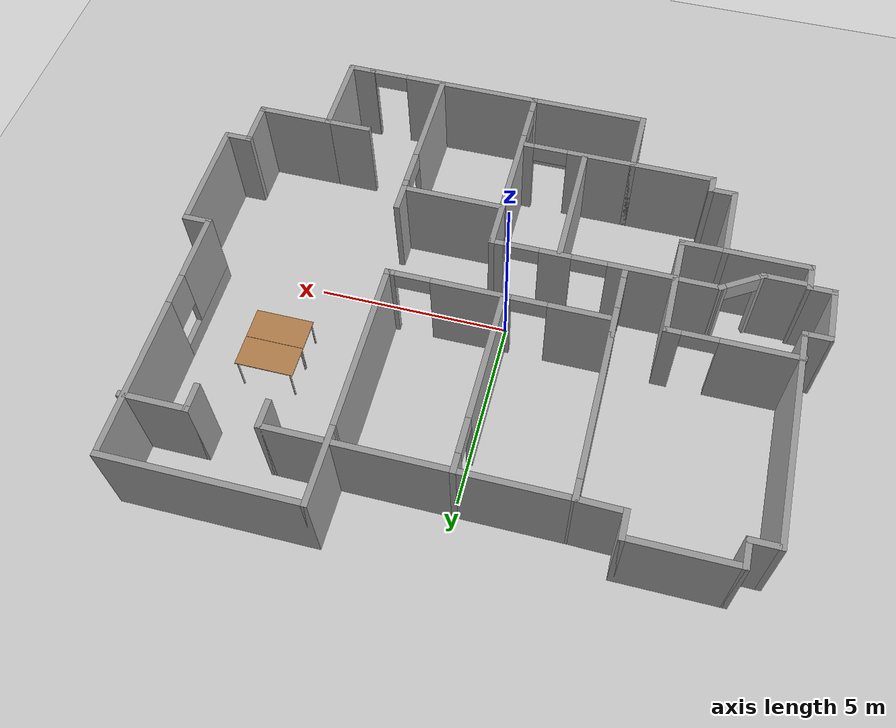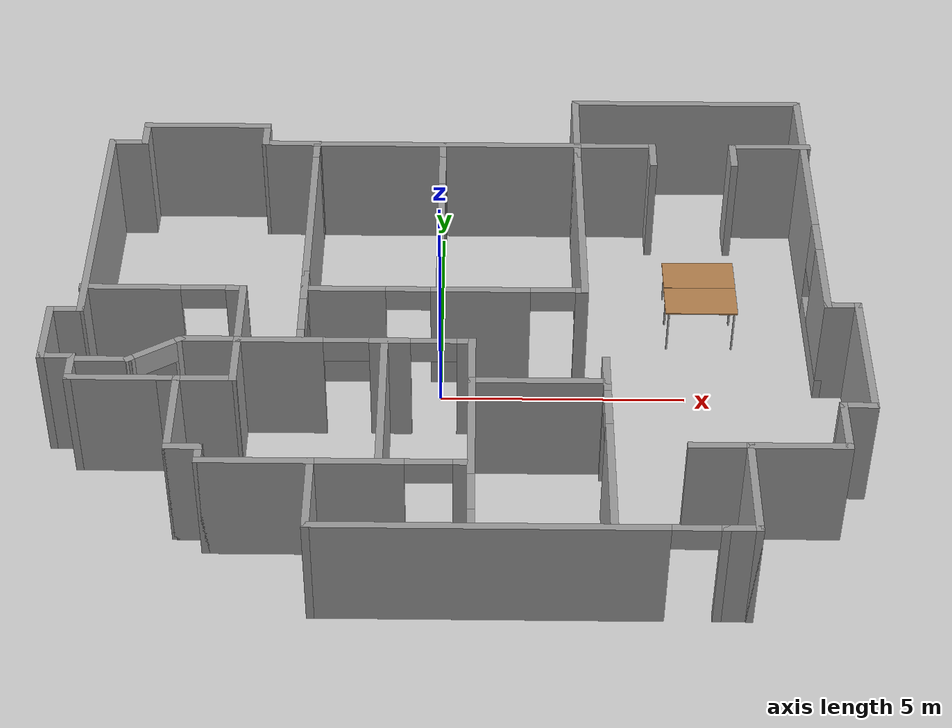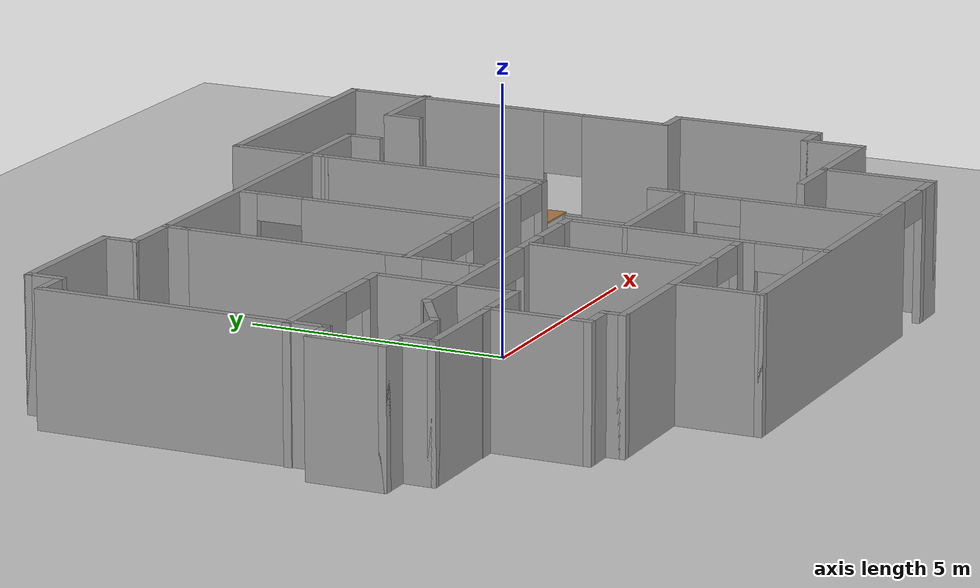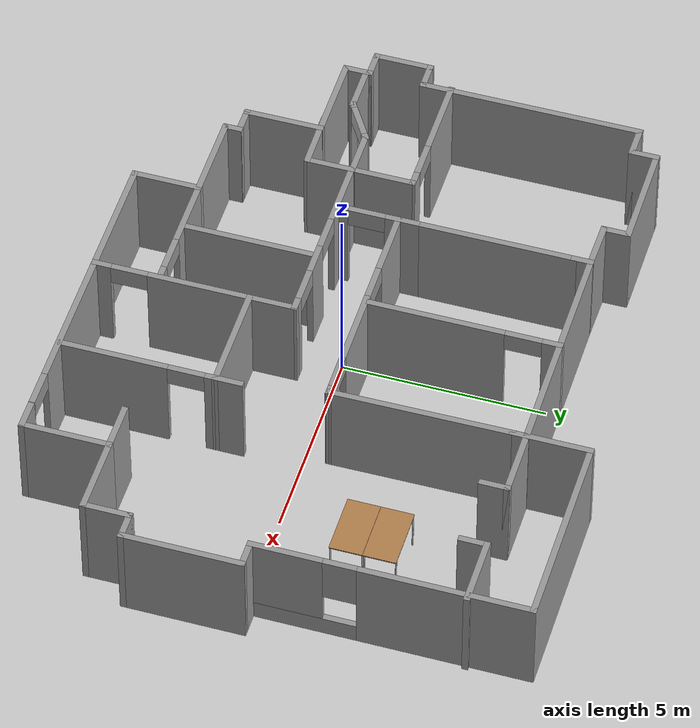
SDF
<sdf version="1.6">
 <world name="default">
  <model name="ground_plane">
   <static>1</static>
   <link name="link">
    <collision name="collision">
     <geometry><plane><normal>0 0 1</normal><size>100 100</size></plane></geometry>
     <surface><friction><ode><mu>100</mu><mu2>50</mu2></ode></friction></surface>
    </collision>
    <visual name="visual">
     <cast_shadows>0</cast_shadows>
     <geometry><plane><normal>0 0 1</normal><size>100 100</size></plane></geometry>
     <material>
      <script><uri>file://media/materials/scripts/gazebo.material</uri><name>Gazebo/Grey</name></script>
     </material>
    </visual>
   </link>
  </model>
  <model name="room01">
   <pose>0.272846 0.453413 0 0 -0 0</pose>
   <link name="Wall_0">
    <collision name="Wall_0_Collision">
     <geometry><box><size>0.75 0.15 2.5</size></box></geometry>
     <pose>0 0 1.25 0 -0 0</pose>
    </collision>
    <visual name="Wall_0_Visual">
     <pose>0 0 1.25 0 -0 0</pose>
     <geometry><box><size>0.75 0.15 2.5</size></box></geometry>
     <material>
      <script><uri>file://media/materials/scripts/gazebo.material</uri><name>Gazebo/Grey</name></script>
      <ambient>1 1 1 1</ambient>
     </material>
     <meta><layer>0</layer></meta>
    </visual>
    <pose>-7.025 4.825 0 0 -0 0</pose>
   </link>
   <link name="Wall_1">
    <collision name="Wall_1_Collision">
     <geometry><box><size>0.75 0.15 2.5</size></box></geometry>
     <pose>0 0 1.25 0 -0 0</pose>
    </collision>
    <visual name="Wall_1_Visual">
     <pose>0 0 1.25 0 -0 0</pose>
     <geometry><box><size>0.75 0.15 2.5</size></box></geometry>
     <material>
      <script><uri>file://media/materials/scripts/gazebo.material</uri><name>Gazebo/Grey</name></script>
      <ambient>1 1 1 1</ambient>
     </material>
     <meta><layer>0</layer></meta>
    </visual>
    <pose>-6.725 5.125 0 0 -0 1.5708</pose>
   </link>
   <link name="Wall_10">
    <collision name="Wall_10_Collision">
     <geometry><box><size>0.75 0.15 2.5</size></box></geometry>
     <pose>0 0 1.25 0 -0 0</pose>
    </collision>
    <visual name="Wall_10_Visual">
     <pose>0 0 1.25 0 -0 0</pose>
     <geometry><box><size>0.75 0.15 2.5</size></box></geometry>
     <material>
      <script><uri>file://media/materials/scripts/gazebo.material</uri><name>Gazebo/Grey</name></script>
      <ambient>1 1 1 1</ambient>
     </material>
     <meta><layer>0</layer></meta>
    </visual>
    <pose>7.725 -0.275 0 0 -0 0</pose>
   </link>
   <link name="Wall_11">
    <collision name="Wall_11_Collision">
     <geometry><box><size>3 0.15 2.5</size></box></geometry>
     <pose>0 0 1.25 0 -0 0</pose>
    </collision>
    <visual name="Wall_11_Visual">
     <pose>0 0 1.25 0 -0 0</pose>
     <geometry><box><size>3 0.15 2.5</size></box></geometry>
     <material>
      <script><uri>file://media/materials/scripts/gazebo.material</uri><name>Gazebo/Grey</name></script>
      <ambient>1 1 1 1</ambient>
     </material>
     <meta><layer>0</layer></meta>
    </visual>
    <pose>8.025 -1.7 0 0 -0 -1.5708</pose>
   </link>
   <link name="Wall_12">
    <collision name="Wall_12_Collision">
     <geometry><box><size>0.75 0.15 2.5</size></box></geometry>
     <pose>0 0 1.25 0 -0 0</pose>
    </collision>
    <visual name="Wall_12_Visual">
     <pose>0 0 1.25 0 -0 0</pose>
     <geometry><box><size>0.75 0.15 2.5</size></box></geometry>
     <material>
      <script><uri>file://media/materials/scripts/gazebo.material</uri><name>Gazebo/Grey</name></script>
      <ambient>1 1 1 1</ambient>
     </material>
     <meta><layer>0</layer></meta>
    </visual>
    <pose>7.725 -3.125 0 0 -0 3.14159</pose>
   </link>
   <link name="Wall_13">
    <collision name="Wall_13_Collision">
     <geometry><box><size>1.25 0.15 2.5</size></box></geometry>
     <pose>0 0 1.25 0 -0 0</pose>
    </collision>
    <visual name="Wall_13_Visual">
     <pose>0 0 1.25 0 -0 0</pose>
     <geometry><box><size>1.25 0.15 2.5</size></box></geometry>
     <material>
      <script><uri>file://media/materials/scripts/gazebo.material</uri><name>Gazebo/Grey</name></script>
      <ambient>1 1 1 1</ambient>
     </material>
     <meta><layer>0</layer></meta>
    </visual>
    <pose>7.425 -3.675 0 0 -0 -1.5708</pose>
   </link>
   <link name="Wall_14">
    <collision name="Wall_14_Collision">
     <geometry><box><size>2 0.15 2.5</size></box></geometry>
     <pose>0 0 1.25 0 -0 0</pose>
    </collision>
    <visual name="Wall_14_Visual">
     <pose>0 0 1.25 0 -0 0</pose>
     <geometry><box><size>2 0.15 2.5</size></box></geometry>
     <material>
      <script><uri>file://media/materials/scripts/gazebo.material</uri><name>Gazebo/Grey</name></script>
      <ambient>1 1 1 1</ambient>
     </material>
     <meta><layer>0</layer></meta>
    </visual>
    <pose>6.5 -4.225 0 0 -0 3.14159</pose>
   </link>
   <link name="Wall_15">
    <collision name="Wall_15_Collision">
     <geometry><box><size>2.25 0.15 2.5</size></box></geometry>
     <pose>0 0 1.25 0 -0 0</pose>
    </collision>
    <visual name="Wall_15_Visual">
     <pose>0 0 1.25 0 -0 0</pose>
     <geometry><box><size>2.25 0.15 2.5</size></box></geometry>
     <material>
      <script><uri>file://media/materials/scripts/gazebo.material</uri><name>Gazebo/Grey</name></script>
      <ambient>1 1 1 1</ambient>
     </material>
     <meta><layer>0</layer></meta>
    </visual>
    <pose>5.575 -5.275 0 0 -0 -1.5708</pose>
   </link>
   <link name="Wall_16">
    <collision name="Wall_16_Collision">
     <geometry><box><size>0.75 0.15 2.5</size></box></geometry>
     <pose>0 0 1.25 0 -0 0</pose>
    </collision>
    <visual name="Wall_16_Visual">
     <pose>0 0 1.25 0 -0 0</pose>
     <geometry><box><size>0.75 0.15 2.5</size></box></geometry>
     <material>
      <script><uri>file://media/materials/scripts/gazebo.material</uri><name>Gazebo/Grey</name></script>
      <ambient>1 1 1 1</ambient>
     </material>
     <meta><layer>0</layer></meta>
    </visual>
    <pose>5.275 -6.325 0 0 -0 3.14159</pose>
   </link>
   <link name="Wall_17">
    <pose>1.175 -6.325 0 0 -0 3.14159</pose>
    <visual name="Wall_17_Visual_0">
     <pose>-3.79148 0 1.25 0 -0 0</pose>
     <geometry><box><size>0.167045 0.15 2.5</size></box></geometry>
     <material>
      <script><uri>file://media/materials/scripts/gazebo.material</uri><name>Gazebo/Grey</name></script>
      <ambient>1 1 1 1</ambient>
     </material>
     <meta><layer>0</layer></meta>
    </visual>
    <collision name="Wall_17_Collision_0">
     <geometry><box><size>0.167045 0.15 2.5</size></box></geometry>
     <pose>-3.79148 0 1.25 0 -0 0</pose>
    </collision>
    <visual name="Wall_17_Visual_1">
     <pose>0.533523 0 1.25 0 -0 0</pose>
     <geometry><box><size>6.68295 0.15 2.5</size></box></geometry>
     <material>
      <script><uri>file://media/materials/scripts/gazebo.material</uri><name>Gazebo/Grey</name></script>
      <ambient>1 1 1 1</ambient>
     </material>
     <meta><layer>0</layer></meta>
    </visual>
    <collision name="Wall_17_Collision_1">
     <geometry><box><size>6.68295 0.15 2.5</size></box></geometry>
     <pose>0.533523 0 1.25 0 -0 0</pose>
    </collision>
    <visual name="Wall_17_Visual_2">
     <pose>-3.25795 0 2.25 0 -0 0</pose>
     <geometry><box><size>0.9 0.15 0.5</size></box></geometry>
     <material>
      <script><uri>file://media/materials/scripts/gazebo.material</uri><name>Gazebo/Grey</name></script>
      <ambient>1 1 1 1</ambient>
     </material>
     <meta><layer>0</layer></meta>
    </visual>
    <collision name="Wall_17_Collision_2">
     <geometry><box><size>0.9 0.15 0.5</size></box></geometry>
     <pose>-3.25795 0 2.25 0 -0 0</pose>
    </collision>
   </link>
   <link name="Wall_18">
    <collision name="Wall_18_Collision">
     <geometry><box><size>1.75 0.15 2.5</size></box></geometry>
     <pose>0 0 1.25 0 -0 0</pose>
    </collision>
    <visual name="Wall_18_Visual">
     <pose>0 0 1.25 0 -0 0</pose>
     <geometry><box><size>1.75 0.15 2.5</size></box></geometry>
     <material>
      <script><uri>file://media/materials/scripts/gazebo.material</uri><name>Gazebo/Grey</name></script>
      <ambient>1 1 1 1</ambient>
     </material>
     <meta><layer>0</layer></meta>
    </visual>
    <pose>-2.625 -5.525 0 0 -0 1.5708</pose>
   </link>
   <link name="Wall_19">
    <collision name="Wall_19_Collision">
     <geometry><box><size>2.25 0.15 2.5</size></box></geometry>
     <pose>0 0 1.25 0 -0 0</pose>
    </collision>
    <visual name="Wall_19_Visual">
     <pose>0 0 1.25 0 -0 0</pose>
     <geometry><box><size>2.25 0.15 2.5</size></box></geometry>
     <material>
      <script><uri>file://media/materials/scripts/gazebo.material</uri><name>Gazebo/Grey</name></script>
      <ambient>1 1 1 1</ambient>
     </material>
     <meta><layer>0</layer></meta>
    </visual>
    <pose>-3.675 -4.725 0 0 -0 3.14159</pose>
   </link>
   <link name="Wall_2">
    <collision name="Wall_2_Collision">
     <geometry><box><size>2.75 0.15 2.5</size></box></geometry>
     <pose>0 0 1.25 0 -0 0</pose>
    </collision>
    <visual name="Wall_2_Visual">
     <pose>0 0 1.25 0 -0 0</pose>
     <geometry><box><size>2.75 0.15 2.5</size></box></geometry>
     <material>
      <script><uri>file://media/materials/scripts/gazebo.material</uri><name>Gazebo/Grey</name></script>
      <ambient>1 1 1 1</ambient>
     </material>
     <meta><layer>0</layer></meta>
    </visual>
    <pose>-5.425 5.425 0 0 -0 0</pose>
   </link>
   <link name="Wall_20">
    <collision name="Wall_20_Collision">
     <geometry><box><size>0.5 0.15 2.5</size></box></geometry>
     <pose>0 0 1.25 0 -0 0</pose>
    </collision>
    <visual name="Wall_20_Visual">
     <pose>0 0 1.25 0 -0 0</pose>
     <geometry><box><size>0.5 0.15 2.5</size></box></geometry>
     <material>
      <script><uri>file://media/materials/scripts/gazebo.material</uri><name>Gazebo/Grey</name></script>
      <ambient>1 1 1 1</ambient>
     </material>
     <meta><layer>0</layer></meta>
    </visual>
    <pose>-4.725 -4.55 0 0 -0 1.5708</pose>
   </link>
   <link name="Wall_21">
    <collision name="Wall_21_Collision">
     <geometry><box><size>0.75 0.15 2.5</size></box></geometry>
     <pose>0 0 1.25 0 -0 0</pose>
    </collision>
    <visual name="Wall_21_Visual">
     <pose>0 0 1.25 0 -0 0</pose>
     <geometry><box><size>0.75 0.15 2.5</size></box></geometry>
     <material>
      <script><uri>file://media/materials/scripts/gazebo.material</uri><name>Gazebo/Grey</name></script>
      <ambient>1 1 1 1</ambient>
     </material>
     <meta><layer>0</layer></meta>
    </visual>
    <pose>-5.025 -4.375 0 0 -0 3.14159</pose>
   </link>
   <link name="Wall_22">
    <collision name="Wall_22_Collision">
     <geometry><box><size>2 0.15 2.5</size></box></geometry>
     <pose>0 0 1.25 0 -0 0</pose>
    </collision>
    <visual name="Wall_22_Visual">
     <pose>0 0 1.25 0 -0 0</pose>
     <geometry><box><size>2 0.15 2.5</size></box></geometry>
     <material>
      <script><uri>file://media/materials/scripts/gazebo.material</uri><name>Gazebo/Grey</name></script>
      <ambient>1 1 1 1</ambient>
     </material>
     <meta><layer>0</layer></meta>
    </visual>
    <pose>-5.325 -3.45 0 0 -0 1.5708</pose>
   </link>
   <link name="Wall_23">
    <collision name="Wall_23_Collision">
     <geometry><box><size>2.25 0.15 2.5</size></box></geometry>
     <pose>0 0 1.25 0 -0 0</pose>
    </collision>
    <visual name="Wall_23_Visual">
     <pose>0 0 1.25 0 -0 0</pose>
     <geometry><box><size>2.25 0.15 2.5</size></box></geometry>
     <material>
      <script><uri>file://media/materials/scripts/gazebo.material</uri><name>Gazebo/Grey</name></script>
      <ambient>1 1 1 1</ambient>
     </material>
     <meta><layer>0</layer></meta>
    </visual>
    <pose>-6.375 -2.525 0 0 -0 3.14159</pose>
   </link>
   <link name="Wall_24">
    <collision name="Wall_24_Collision">
     <geometry><box><size>0.75 0.15 2.5</size></box></geometry>
     <pose>0 0 1.25 0 -0 0</pose>
    </collision>
    <visual name="Wall_24_Visual">
     <pose>0 0 1.25 0 -0 0</pose>
     <geometry><box><size>0.75 0.15 2.5</size></box></geometry>
     <material>
      <script><uri>file://media/materials/scripts/gazebo.material</uri><name>Gazebo/Grey</name></script>
      <ambient>1 1 1 1</ambient>
     </material>
     <meta><layer>0</layer></meta>
    </visual>
    <pose>-7.425 -2.225 0 0 -0 1.5708</pose>
   </link>
   <link name="Wall_25">
    <collision name="Wall_25_Collision">
     <geometry><box><size>0.75 0.15 2.5</size></box></geometry>
     <pose>0 0 1.25 0 -0 0</pose>
    </collision>
    <visual name="Wall_25_Visual">
     <pose>0 0 1.25 0 -0 0</pose>
     <geometry><box><size>0.75 0.15 2.5</size></box></geometry>
     <material>
      <script><uri>file://media/materials/scripts/gazebo.material</uri><name>Gazebo/Grey</name></script>
      <ambient>1 1 1 1</ambient>
     </material>
     <meta><layer>0</layer></meta>
    </visual>
    <pose>-7.725 -1.925 0 0 -0 3.14159</pose>
   </link>
   <link name="Wall_26">
    <collision name="Wall_26_Collision">
     <geometry><box><size>1.5 0.15 2.5</size></box></geometry>
     <pose>0 0 1.25 0 -0 0</pose>
    </collision>
    <visual name="Wall_26_Visual">
     <pose>0 0 1.25 0 -0 0</pose>
     <geometry><box><size>1.5 0.15 2.5</size></box></geometry>
     <material>
      <script><uri>file://media/materials/scripts/gazebo.material</uri><name>Gazebo/Grey</name></script>
      <ambient>1 1 1 1</ambient>
     </material>
     <meta><layer>0</layer></meta>
    </visual>
    <pose>-8.025 -1.25 0 0 -0 1.5708</pose>
   </link>
   <link name="Wall_27">
    <collision name="Wall_27_Collision">
     <geometry><box><size>0.75 0.15 2.5</size></box></geometry>
     <pose>0 0 1.25 0 -0 0</pose>
    </collision>
    <visual name="Wall_27_Visual">
     <pose>0 0 1.25 0 -0 0</pose>
     <geometry><box><size>0.75 0.15 2.5</size></box></geometry>
     <material>
      <script><uri>file://media/materials/scripts/gazebo.material</uri><name>Gazebo/Grey</name></script>
      <ambient>1 1 1 1</ambient>
     </material>
     <meta><layer>0</layer></meta>
    </visual>
    <pose>-7.72485 -0.574782 0 0 -0 0.000727</pose>
   </link>
   <link name="Wall_28">
    <collision name="Wall_28_Collision">
     <geometry><box><size>5.55 0.15 2.5</size></box></geometry>
     <pose>0 0 1.25 0 -0 0</pose>
    </collision>
    <visual name="Wall_28_Visual">
     <pose>0 0 1.25 0 -0 0</pose>
     <geometry><box><size>5.55 0.15 2.5</size></box></geometry>
     <material>
      <script><uri>file://media/materials/scripts/gazebo.material</uri><name>Gazebo/Grey</name></script>
      <ambient>1 1 1 1</ambient>
     </material>
     <meta><layer>0</layer></meta>
    </visual>
    <pose>-7.42471 2.12544 0 0 -0 1.5708</pose>
   </link>
   <link name="Wall_3">
    <collision name="Wall_3_Collision">
     <geometry><box><size>0.75 0.15 2.5</size></box></geometry>
     <pose>0 0 1.25 0 -0 0</pose>
    </collision>
    <visual name="Wall_3_Visual">
     <pose>0 0 1.25 0 -0 0</pose>
     <geometry><box><size>0.75 0.15 2.5</size></box></geometry>
     <material>
      <script><uri>file://media/materials/scripts/gazebo.material</uri><name>Gazebo/Grey</name></script>
      <ambient>1 1 1 1</ambient>
     </material>
     <meta><layer>0</layer></meta>
    </visual>
    <pose>-4.125 5.125 0 0 -0 -1.5708</pose>
   </link>
   <link name="Wall_31">
    <pose>-5.85089 0.10555 0 0 -0 3.138</pose>
    <visual name="Wall_31_Visual_0">
     <pose>-1.47085 0 1.25 0 -0 0</pose>
     <geometry><box><size>0.427721 0.15 2.5</size></box></geometry>
     <material>
      <script><uri>file://media/materials/scripts/gazebo.material</uri><name>Gazebo/Grey</name></script>
      <ambient>1 1 1 1</ambient>
     </material>
     <meta><layer>0</layer></meta>
    </visual>
    <collision name="Wall_31_Collision_0">
     <geometry><box><size>0.427721 0.15 2.5</size></box></geometry>
     <pose>-1.47085 0 1.25 0 -0 0</pose>
    </collision>
    <visual name="Wall_31_Visual_1">
     <pose>0.66386 0 1.25 0 -0 0</pose>
     <geometry><box><size>2.0417 0.15 2.5</size></box></geometry>
     <material>
      <script><uri>file://media/materials/scripts/gazebo.material</uri><name>Gazebo/Grey</name></script>
      <ambient>1 1 1 1</ambient>
     </material>
     <meta><layer>0</layer></meta>
    </visual>
    <collision name="Wall_31_Collision_1">
     <geometry><box><size>2.0417 0.15 2.5</size></box></geometry>
     <pose>0.66386 0 1.25 0 -0 0</pose>
    </collision>
    <visual name="Wall_31_Visual_2">
     <pose>-0.806991 0 2.25 0 -0 0</pose>
     <geometry><box><size>0.9 0.15 0.5</size></box></geometry>
     <material>
      <script><uri>file://media/materials/scripts/gazebo.material</uri><name>Gazebo/Grey</name></script>
      <ambient>1 1 1 1</ambient>
     </material>
     <meta><layer>0</layer></meta>
    </visual>
    <collision name="Wall_31_Collision_2">
     <geometry><box><size>0.9 0.15 0.5</size></box></geometry>
     <pose>-0.806991 0 2.25 0 -0 0</pose>
    </collision>
   </link>
   <link name="Wall_34">
    <collision name="Wall_34_Collision">
     <geometry><box><size>1.63706 0.15 2.5</size></box></geometry>
     <pose>0 0 1.25 0 -0 0</pose>
    </collision>
    <visual name="Wall_34_Visual">
     <pose>0 0 1.25 0 -0 0</pose>
     <geometry><box><size>1.63706 0.15 2.5</size></box></geometry>
     <material>
      <script><uri>file://media/materials/scripts/gazebo.material</uri><name>Gazebo/Grey</name></script>
      <ambient>1 1 1 1</ambient>
     </material>
     <meta><layer>0</layer></meta>
    </visual>
    <pose>-4.24118 -0.661256 0 0 -0 -1.5708</pose>
   </link>
   <link name="Wall_35">
    <collision name="Wall_35_Collision">
     <geometry><box><size>1.25 0.15 2.5</size></box></geometry>
     <pose>0 0 1.25 0 -0 0</pose>
    </collision>
    <visual name="Wall_35_Visual">
     <pose>0 0 1.25 0 -0 0</pose>
     <geometry><box><size>1.25 0.15 2.5</size></box></geometry>
     <material>
      <script><uri>file://media/materials/scripts/gazebo.material</uri><name>Gazebo/Grey</name></script>
      <ambient>1 1 1 1</ambient>
     </material>
     <meta><layer>0</layer></meta>
    </visual>
    <pose>-4.79118 -1.40479 0 0 -0 3.14159</pose>
   </link>
   <link name="Wall_36">
    <pose>-5.82645 -1.70718 0 0 -0 -2.58433</pose>
    <visual name="Wall_36_Visual_0">
     <pose>-0.544728 0 1.25 0 -0 0</pose>
     <geometry><box><size>0.204077 0.15 2.5</size></box></geometry>
     <material>
      <script><uri>file://media/materials/scripts/gazebo.material</uri><name>Gazebo/Grey</name></script>
      <ambient>1 1 1 1</ambient>
     </material>
     <meta><layer>0</layer></meta>
    </visual>
    <collision name="Wall_36_Collision_0">
     <geometry><box><size>0.204077 0.15 2.5</size></box></geometry>
     <pose>-0.544728 0 1.25 0 -0 0</pose>
    </collision>
    <visual name="Wall_36_Visual_1">
     <pose>0.552039 0 1.25 0 -0 0</pose>
     <geometry><box><size>0.189456 0.15 2.5</size></box></geometry>
     <material>
      <script><uri>file://media/materials/scripts/gazebo.material</uri><name>Gazebo/Grey</name></script>
      <ambient>1 1 1 1</ambient>
     </material>
     <meta><layer>0</layer></meta>
    </visual>
    <collision name="Wall_36_Collision_1">
     <geometry><box><size>0.189456 0.15 2.5</size></box></geometry>
     <pose>0.552039 0 1.25 0 -0 0</pose>
    </collision>
    <visual name="Wall_36_Visual_2">
     <pose>0.007311 0 2.25 0 -0 0</pose>
     <geometry><box><size>0.9 0.15 0.5</size></box></geometry>
     <material>
      <script><uri>file://media/materials/scripts/gazebo.material</uri><name>Gazebo/Grey</name></script>
      <ambient>1 1 1 1</ambient>
     </material>
     <meta><layer>0</layer></meta>
    </visual>
    <collision name="Wall_36_Collision_2">
     <geometry><box><size>0.9 0.15 0.5</size></box></geometry>
     <pose>0.007311 0 2.25 0 -0 0</pose>
    </collision>
   </link>
   <link name="Wall_38">
    <collision name="Wall_38_Collision">
     <geometry><box><size>1.117 0.15 2.5</size></box></geometry>
     <pose>0 0 1.25 0 -0 0</pose>
    </collision>
    <visual name="Wall_38_Visual">
     <pose>0 0 1.25 0 -0 0</pose>
     <geometry><box><size>1.117 0.15 2.5</size></box></geometry>
     <material>
      <script><uri>file://media/materials/scripts/gazebo.material</uri><name>Gazebo/Grey</name></script>
      <ambient>1 1 1 1</ambient>
     </material>
     <meta><layer>0</layer></meta>
    </visual>
    <pose>-6.79521 -2.00956 0 0 -0 3.14159</pose>
   </link>
   <link name="Wall_4">
    <collision name="Wall_4_Collision">
     <geometry><box><size>1.27998 0.15 2.5</size></box></geometry>
     <pose>0 0 1.25 0 -0 0</pose>
    </collision>
    <visual name="Wall_4_Visual">
     <pose>0 0 1.25 0 -0 0</pose>
     <geometry><box><size>1.27998 0.15 2.5</size></box></geometry>
     <material>
      <script><uri>file://media/materials/scripts/gazebo.material</uri><name>Gazebo/Grey</name></script>
      <ambient>1 1 1 1</ambient>
     </material>
     <meta><layer>0</layer></meta>
    </visual>
    <pose>-3.56008 4.81625 0 0 -0 -0.015479</pose>
   </link>
   <link name="Wall_40">
    <collision name="Wall_40_Collision">
     <geometry><box><size>1.53905 0.15 2.5</size></box></geometry>
     <pose>0 0 1.25 0 -0 0</pose>
    </collision>
    <visual name="Wall_40_Visual">
     <pose>0 0 1.25 0 -0 0</pose>
     <geometry><box><size>1.53905 0.15 2.5</size></box></geometry>
     <material>
      <script><uri>file://media/materials/scripts/gazebo.material</uri><name>Gazebo/Grey</name></script>
      <ambient>1 1 1 1</ambient>
     </material>
     <meta><layer>0</layer></meta>
    </visual>
    <pose>-4.93567 -2.5276 0 0 -0 0.010949</pose>
   </link>
   <link name="Wall_41">
    <collision name="Wall_41_Collision">
     <geometry><box><size>1.25 0.15 2.5</size></box></geometry>
     <pose>0 0 1.25 0 -0 0</pose>
    </collision>
    <visual name="Wall_41_Visual">
     <pose>0 0 1.25 0 -0 0</pose>
     <geometry><box><size>1.25 0.15 2.5</size></box></geometry>
     <material>
      <script><uri>file://media/materials/scripts/gazebo.material</uri><name>Gazebo/Grey</name></script>
      <ambient>1 1 1 1</ambient>
     </material>
     <meta><layer>0</layer></meta>
    </visual>
    <pose>-4.24118 -1.97 0 0 -0 1.5708</pose>
   </link>
   <link name="Wall_43">
    <pose>-1.94118 -1.42 0 0 -0 0</pose>
    <visual name="Wall_43_Visual_0">
     <pose>-1.49607 0 1.25 0 -0 0</pose>
     <geometry><box><size>1.75786 0.15 2.5</size></box></geometry>
     <material>
      <script><uri>file://media/materials/scripts/gazebo.material</uri><name>Gazebo/Grey</name></script>
      <ambient>1 1 1 1</ambient>
     </material>
     <meta><layer>0</layer></meta>
    </visual>
    <collision name="Wall_43_Collision_0">
     <geometry><box><size>1.75786 0.15 2.5</size></box></geometry>
     <pose>-1.49607 0 1.25 0 -0 0</pose>
    </collision>
    <visual name="Wall_43_Visual_1">
     <pose>0.68987 0 1.25 0 -0 0</pose>
     <geometry><box><size>0.814026 0.15 2.5</size></box></geometry>
     <material>
      <script><uri>file://media/materials/scripts/gazebo.material</uri><name>Gazebo/Grey</name></script>
      <ambient>1 1 1 1</ambient>
     </material>
     <meta><layer>0</layer></meta>
    </visual>
    <collision name="Wall_43_Collision_1">
     <geometry><box><size>0.814026 0.15 2.5</size></box></geometry>
     <pose>0.68987 0 1.25 0 -0 0</pose>
    </collision>
    <visual name="Wall_43_Visual_2">
     <pose>2.18594 0 1.25 0 -0 0</pose>
     <geometry><box><size>0.378117 0.15 2.5</size></box></geometry>
     <material>
      <script><uri>file://media/materials/scripts/gazebo.material</uri><name>Gazebo/Grey</name></script>
      <ambient>1 1 1 1</ambient>
     </material>
     <meta><layer>0</layer></meta>
    </visual>
    <collision name="Wall_43_Collision_2">
     <geometry><box><size>0.378117 0.15 2.5</size></box></geometry>
     <pose>2.18594 0 1.25 0 -0 0</pose>
    </collision>
    <visual name="Wall_43_Visual_3">
     <pose>-0.167143 0 2.25 0 -0 0</pose>
     <geometry><box><size>0.9 0.15 0.5</size></box></geometry>
     <material>
      <script><uri>file://media/materials/scripts/gazebo.material</uri><name>Gazebo/Grey</name></script>
      <ambient>1 1 1 1</ambient>
     </material>
     <meta><layer>0</layer></meta>
    </visual>
    <collision name="Wall_43_Collision_3">
     <geometry><box><size>0.9 0.15 0.5</size></box></geometry>
     <pose>-0.167143 0 2.25 0 -0 0</pose>
    </collision>
    <visual name="Wall_43_Visual_4">
     <pose>1.54688 0 2.25 0 -0 0</pose>
     <geometry><box><size>0.9 0.15 0.5</size></box></geometry>
     <material>
      <script><uri>file://media/materials/scripts/gazebo.material</uri><name>Gazebo/Grey</name></script>
      <ambient>1 1 1 1</ambient>
     </material>
     <meta><layer>0</layer></meta>
    </visual>
    <collision name="Wall_43_Collision_4">
     <geometry><box><size>0.9 0.15 0.5</size></box></geometry>
     <pose>1.54688 0 2.25 0 -0 0</pose>
    </collision>
   </link>
   <link name="Wall_44">
    <collision name="Wall_44_Collision">
     <geometry><box><size>1.25 0.15 2.5</size></box></geometry>
     <pose>0 0 1.25 0 -0 0</pose>
    </collision>
    <visual name="Wall_44_Visual">
     <pose>0 0 1.25 0 -0 0</pose>
     <geometry><box><size>1.25 0.15 2.5</size></box></geometry>
     <material>
      <script><uri>file://media/materials/scripts/gazebo.material</uri><name>Gazebo/Grey</name></script>
      <ambient>1 1 1 1</ambient>
     </material>
     <meta><layer>0</layer></meta>
    </visual>
    <pose>0.359054 -1.96978 0 0 -0 -1.57036</pose>
   </link>
   <link name="Wall_45">
    <collision name="Wall_45_Collision">
     <geometry><box><size>2.75 0.15 2.5</size></box></geometry>
     <pose>0 0 1.25 0 -0 0</pose>
    </collision>
    <visual name="Wall_45_Visual">
     <pose>0 0 1.25 0 -0 0</pose>
     <geometry><box><size>2.75 0.15 2.5</size></box></geometry>
     <material>
      <script><uri>file://media/materials/scripts/gazebo.material</uri><name>Gazebo/Grey</name></script>
      <ambient>1 1 1 1</ambient>
     </material>
     <meta><layer>0</layer></meta>
    </visual>
    <pose>1.65929 -2.51956 0 0 -0 0</pose>
   </link>
   <link name="Wall_46">
    <collision name="Wall_46_Collision">
     <geometry><box><size>0.75 0.15 2.5</size></box></geometry>
     <pose>0 0 1.25 0 -0 0</pose>
    </collision>
    <visual name="Wall_46_Visual">
     <pose>0 0 1.25 0 -0 0</pose>
     <geometry><box><size>0.75 0.15 2.5</size></box></geometry>
     <material>
      <script><uri>file://media/materials/scripts/gazebo.material</uri><name>Gazebo/Grey</name></script>
      <ambient>1 1 1 1</ambient>
     </material>
     <meta><layer>0</layer></meta>
    </visual>
    <pose>2.95905 -2.21978 0 0 -0 1.57159</pose>
   </link>
   <link name="Wall_5">
    <collision name="Wall_5_Collision">
     <geometry><box><size>0.55247 0.15 2.5</size></box></geometry>
     <pose>0 0 1.25 0 -0 0</pose>
    </collision>
    <visual name="Wall_5_Visual">
     <pose>0 0 1.25 0 -0 0</pose>
     <geometry><box><size>0.55247 0.15 2.5</size></box></geometry>
     <material>
      <script><uri>file://media/materials/scripts/gazebo.material</uri><name>Gazebo/Grey</name></script>
      <ambient>1 1 1 1</ambient>
     </material>
     <meta><layer>0</layer></meta>
    </visual>
    <pose>-3.01265 4.60628 0 0 -0 -1.5708</pose>
   </link>
   <link name="Wall_51">
    <pose>-0.192422 0.103387 0 0 -0 0</pose>
    <visual name="Wall_51_Visual_0">
     <pose>-2.03316 0 1.25 0 -0 0</pose>
     <geometry><box><size>1.68369 0.15 2.5</size></box></geometry>
     <material>
      <script><uri>file://media/materials/scripts/gazebo.material</uri><name>Gazebo/Grey</name></script>
      <ambient>1 1 1 1</ambient>
     </material>
     <meta><layer>0</layer></meta>
    </visual>
    <collision name="Wall_51_Collision_0">
     <geometry><box><size>1.68369 0.15 2.5</size></box></geometry>
     <pose>-2.03316 0 1.25 0 -0 0</pose>
    </collision>
    <visual name="Wall_51_Visual_1">
     <pose>0.710363 0 1.25 0 -0 0</pose>
     <geometry><box><size>2.00335 0.15 2.5</size></box></geometry>
     <material>
      <script><uri>file://media/materials/scripts/gazebo.material</uri><name>Gazebo/Grey</name></script>
      <ambient>1 1 1 1</ambient>
     </material>
     <meta><layer>0</layer></meta>
    </visual>
    <collision name="Wall_51_Collision_1">
     <geometry><box><size>2.00335 0.15 2.5</size></box></geometry>
     <pose>0.710363 0 1.25 0 -0 0</pose>
    </collision>
    <visual name="Wall_51_Visual_2">
     <pose>2.74352 0 1.25 0 -0 0</pose>
     <geometry><box><size>0.262961 0.15 2.5</size></box></geometry>
     <material>
      <script><uri>file://media/materials/scripts/gazebo.material</uri><name>Gazebo/Grey</name></script>
      <ambient>1 1 1 1</ambient>
     </material>
     <meta><layer>0</layer></meta>
    </visual>
    <collision name="Wall_51_Collision_2">
     <geometry><box><size>0.262961 0.15 2.5</size></box></geometry>
     <pose>2.74352 0 1.25 0 -0 0</pose>
    </collision>
    <visual name="Wall_51_Visual_3">
     <pose>-0.741312 0 2.25 0 -0 0</pose>
     <geometry><box><size>0.9 0.15 0.5</size></box></geometry>
     <material>
      <script><uri>file://media/materials/scripts/gazebo.material</uri><name>Gazebo/Grey</name></script>
      <ambient>1 1 1 1</ambient>
     </material>
     <meta><layer>0</layer></meta>
    </visual>
    <collision name="Wall_51_Collision_3">
     <geometry><box><size>0.9 0.15 0.5</size></box></geometry>
     <pose>-0.741312 0 2.25 0 -0 0</pose>
    </collision>
    <visual name="Wall_51_Visual_4">
     <pose>2.16204 0 2.25 0 -0 0</pose>
     <geometry><box><size>0.9 0.15 0.5</size></box></geometry>
     <material>
      <script><uri>file://media/materials/scripts/gazebo.material</uri><name>Gazebo/Grey</name></script>
      <ambient>1 1 1 1</ambient>
     </material>
     <meta><layer>0</layer></meta>
    </visual>
    <collision name="Wall_51_Collision_4">
     <geometry><box><size>0.9 0.15 0.5</size></box></geometry>
     <pose>2.16204 0 2.25 0 -0 0</pose>
    </collision>
   </link>
   <link name="Wall_52">
    <collision name="Wall_52_Collision">
     <geometry><box><size>4.50425 0.15 2.5</size></box></geometry>
     <pose>0 0 1.25 0 -0 0</pose>
    </collision>
    <visual name="Wall_52_Visual">
     <pose>0 0 1.25 0 -0 0</pose>
     <geometry><box><size>4.50425 0.15 2.5</size></box></geometry>
     <material>
      <script><uri>file://media/materials/scripts/gazebo.material</uri><name>Gazebo/Grey</name></script>
      <ambient>1 1 1 1</ambient>
     </material>
     <meta><layer>0</layer></meta>
    </visual>
    <pose>2.59129 2.29794 0 0 -0 1.57828</pose>
   </link>
   <link name="Wall_56">
    <collision name="Wall_56_Collision">
     <geometry><box><size>4 0.15 2.5</size></box></geometry>
     <pose>0 0 1.25 0 -0 0</pose>
    </collision>
    <visual name="Wall_56_Visual">
     <pose>0 0 1.25 0 -0 0</pose>
     <geometry><box><size>4 0.15 2.5</size></box></geometry>
     <material>
      <script><uri>file://media/materials/scripts/gazebo.material</uri><name>Gazebo/Grey</name></script>
      <ambient>1 1 1 1</ambient>
     </material>
     <meta><layer>0</layer></meta>
    </visual>
    <pose>-3.01265 2.48004 0 0 -0 -1.5708</pose>
   </link>
   <link name="Wall_60">
    <collision name="Wall_60_Collision">
     <geometry><box><size>5.75 0.15 2.5</size></box></geometry>
     <pose>0 0 1.25 0 -0 0</pose>
    </collision>
    <visual name="Wall_60_Visual">
     <pose>0 0 1.25 0 -0 0</pose>
     <geometry><box><size>5.75 0.15 2.5</size></box></geometry>
     <material>
      <script><uri>file://media/materials/scripts/gazebo.material</uri><name>Gazebo/Grey</name></script>
      <ambient>1 1 1 1</ambient>
     </material>
     <meta><layer>0</layer></meta>
    </visual>
    <pose>-0.212649 4.80751 0 0 -0 0</pose>
   </link>
   <link name="Wall_62">
    <pose>-0.304091 2.50821 0 0 -0 -1.5708</pose>
    <visual name="Wall_62_Visual_0">
     <pose>-2.12525 0 1.25 0 -0 0</pose>
     <geometry><box><size>0.499503 0.15 2.5</size></box></geometry>
     <material>
      <script><uri>file://media/materials/scripts/gazebo.material</uri><name>Gazebo/Grey</name></script>
      <ambient>1 1 1 1</ambient>
     </material>
     <meta><layer>0</layer></meta>
    </visual>
    <collision name="Wall_62_Collision_0">
     <geometry><box><size>0.499503 0.15 2.5</size></box></geometry>
     <pose>-2.12525 0 1.25 0 -0 0</pose>
    </collision>
    <visual name="Wall_62_Visual_1">
     <pose>0.699751 0 1.25 0 -0 0</pose>
     <geometry><box><size>3.3505 0.15 2.5</size></box></geometry>
     <material>
      <script><uri>file://media/materials/scripts/gazebo.material</uri><name>Gazebo/Grey</name></script>
      <ambient>1 1 1 1</ambient>
     </material>
     <meta><layer>0</layer></meta>
    </visual>
    <collision name="Wall_62_Collision_1">
     <geometry><box><size>3.3505 0.15 2.5</size></box></geometry>
     <pose>0.699751 0 1.25 0 -0 0</pose>
    </collision>
    <visual name="Wall_62_Visual_2">
     <pose>-1.4255 0 2.25 0 -0 0</pose>
     <geometry><box><size>0.9 0.15 0.5</size></box></geometry>
     <material>
      <script><uri>file://media/materials/scripts/gazebo.material</uri><name>Gazebo/Grey</name></script>
      <ambient>1 1 1 1</ambient>
     </material>
     <meta><layer>0</layer></meta>
    </visual>
    <collision name="Wall_62_Collision_2">
     <geometry><box><size>0.9 0.15 0.5</size></box></geometry>
     <pose>-1.4255 0 2.25 0 -0 0</pose>
    </collision>
   </link>
   <link name="Wall_64">
    <pose>-3.01265 -0.36996 0 0 -0 -1.5708</pose>
    <visual name="Wall_64_Visual_0">
     <pose>-0.576892 0 1.25 0 -0 0</pose>
     <geometry><box><size>0.846216 0.15 2.5</size></box></geometry>
     <material>
      <script><uri>file://media/materials/scripts/gazebo.material</uri><name>Gazebo/Grey</name></script>
      <ambient>1 1 1 1</ambient>
     </material>
     <meta><layer>0</layer></meta>
    </visual>
    <collision name="Wall_64_Collision_0">
     <geometry><box><size>0.846216 0.15 2.5</size></box></geometry>
     <pose>-0.576892 0 1.25 0 -0 0</pose>
    </collision>
    <visual name="Wall_64_Visual_1">
     <pose>0.873108 0 1.25 0 -0 0</pose>
     <geometry><box><size>0.253784 0.15 2.5</size></box></geometry>
     <material>
      <script><uri>file://media/materials/scripts/gazebo.material</uri><name>Gazebo/Grey</name></script>
      <ambient>1 1 1 1</ambient>
     </material>
     <meta><layer>0</layer></meta>
    </visual>
    <collision name="Wall_64_Collision_1">
     <geometry><box><size>0.253784 0.15 2.5</size></box></geometry>
     <pose>0.873108 0 1.25 0 -0 0</pose>
    </collision>
    <visual name="Wall_64_Visual_2">
     <pose>0.296216 0 2.25 0 -0 0</pose>
     <geometry><box><size>0.9 0.15 0.5</size></box></geometry>
     <material>
      <script><uri>file://media/materials/scripts/gazebo.material</uri><name>Gazebo/Grey</name></script>
      <ambient>1 1 1 1</ambient>
     </material>
     <meta><layer>0</layer></meta>
    </visual>
    <collision name="Wall_64_Collision_2">
     <geometry><box><size>0.9 0.15 0.5</size></box></geometry>
     <pose>0.296216 0 2.25 0 -0 0</pose>
    </collision>
   </link>
   <link name="Wall_66">
    <collision name="Wall_66_Collision">
     <geometry><box><size>1.75 0.15 2.5</size></box></geometry>
     <pose>0 0 1.25 0 -0 0</pose>
    </collision>
    <visual name="Wall_66_Visual">
     <pose>0 0 1.25 0 -0 0</pose>
     <geometry><box><size>1.75 0.15 2.5</size></box></geometry>
     <material>
      <script><uri>file://media/materials/scripts/gazebo.material</uri><name>Gazebo/Grey</name></script>
      <ambient>1 1 1 1</ambient>
     </material>
     <meta><layer>0</layer></meta>
    </visual>
    <pose>3.38735 4.80751 0 0 -0 0</pose>
   </link>
   <link name="Wall_68">
    <collision name="Wall_68_Collision">
     <geometry><box><size>1.75 0.15 2.5</size></box></geometry>
     <pose>0 0 1.25 0 -0 0</pose>
    </collision>
    <visual name="Wall_68_Visual">
     <pose>0 0 1.25 0 -0 0</pose>
     <geometry><box><size>1.75 0.15 2.5</size></box></geometry>
     <material>
      <script><uri>file://media/materials/scripts/gazebo.material</uri><name>Gazebo/Grey</name></script>
      <ambient>1 1 1 1</ambient>
     </material>
     <meta><layer>0</layer></meta>
    </visual>
    <pose>6.7076 4.81552 0 0 -0 0</pose>
   </link>
   <link name="Wall_7">
    <collision name="Wall_7_Collision">
     <geometry><box><size>2 0.15 2.5</size></box></geometry>
     <pose>0 0 1.25 0 -0 0</pose>
    </collision>
    <visual name="Wall_7_Visual">
     <pose>0 0 1.25 0 -0 0</pose>
     <geometry><box><size>2 0.15 2.5</size></box></geometry>
     <material>
      <script><uri>file://media/materials/scripts/gazebo.material</uri><name>Gazebo/Grey</name></script>
      <ambient>1 1 1 1</ambient>
     </material>
     <meta><layer>0</layer></meta>
    </visual>
    <pose>2.575 5.4 0 0 -0 1.5708</pose>
   </link>
   <link name="Wall_70">
    <collision name="Wall_70_Collision">
     <geometry><box><size>0.75 0.15 2.5</size></box></geometry>
     <pose>0 0 1.25 0 -0 0</pose>
    </collision>
    <visual name="Wall_70_Visual">
     <pose>0 0 1.25 0 -0 0</pose>
     <geometry><box><size>0.75 0.15 2.5</size></box></geometry>
     <material>
      <script><uri>file://media/materials/scripts/gazebo.material</uri><name>Gazebo/Grey</name></script>
      <ambient>1 1 1 1</ambient>
     </material>
     <meta><layer>0</layer></meta>
    </visual>
    <pose>4.18735 4.50751 0 0 -0 -1.5708</pose>
   </link>
   <link name="Wall_72">
    <collision name="Wall_72_Collision">
     <geometry><box><size>0.75 0.15 2.5</size></box></geometry>
     <pose>0 0 1.25 0 -0 0</pose>
    </collision>
    <visual name="Wall_72_Visual">
     <pose>0 0 1.25 0 -0 0</pose>
     <geometry><box><size>0.75 0.15 2.5</size></box></geometry>
     <material>
      <script><uri>file://media/materials/scripts/gazebo.material</uri><name>Gazebo/Grey</name></script>
      <ambient>1 1 1 1</ambient>
     </material>
     <meta><layer>0</layer></meta>
    </visual>
    <pose>5.90759 4.51552 0 0 -0 -1.5708</pose>
   </link>
   <link name="Wall_74">
    <pose>2.95929 -4.39456 0 0 -0 -1.5708</pose>
    <visual name="Wall_74_Visual_0">
     <pose>-1.78546 0 1.25 0 -0 0</pose>
     <geometry><box><size>0.329082 0.15 2.5</size></box></geometry>
     <material>
      <script><uri>file://media/materials/scripts/gazebo.material</uri><name>Gazebo/Grey</name></script>
      <ambient>1 1 1 1</ambient>
     </material>
     <meta><layer>0</layer></meta>
    </visual>
    <collision name="Wall_74_Collision_0">
     <geometry><box><size>0.329082 0.15 2.5</size></box></geometry>
     <pose>-1.78546 0 1.25 0 -0 0</pose>
    </collision>
    <visual name="Wall_74_Visual_1">
     <pose>0.614541 0 1.25 0 -0 0</pose>
     <geometry><box><size>2.67092 0.15 2.5</size></box></geometry>
     <material>
      <script><uri>file://media/materials/scripts/gazebo.material</uri><name>Gazebo/Grey</name></script>
      <ambient>1 1 1 1</ambient>
     </material>
     <meta><layer>0</layer></meta>
    </visual>
    <collision name="Wall_74_Collision_1">
     <geometry><box><size>2.67092 0.15 2.5</size></box></geometry>
     <pose>0.614541 0 1.25 0 -0 0</pose>
    </collision>
    <visual name="Wall_74_Visual_2">
     <pose>-1.17092 0 2.25 0 -0 0</pose>
     <geometry><box><size>0.9 0.15 0.5</size></box></geometry>
     <material>
      <script><uri>file://media/materials/scripts/gazebo.material</uri><name>Gazebo/Grey</name></script>
      <ambient>1 1 1 1</ambient>
     </material>
     <meta><layer>0</layer></meta>
    </visual>
    <collision name="Wall_74_Collision_2">
     <geometry><box><size>0.9 0.15 0.5</size></box></geometry>
     <pose>-1.17092 0 2.25 0 -0 0</pose>
    </collision>
   </link>
   <link name="Wall_76">
    <pose>0.359293 -4.41956 0 0 -0 -1.5708</pose>
    <visual name="Wall_76_Visual_0">
     <pose>-0.691095 0 1.25 0 -0 0</pose>
     <geometry><box><size>2.56781 0.15 2.5</size></box></geometry>
     <material>
      <script><uri>file://media/materials/scripts/gazebo.material</uri><name>Gazebo/Grey</name></script>
      <ambient>1 1 1 1</ambient>
     </material>
     <meta><layer>0</layer></meta>
    </visual>
    <collision name="Wall_76_Collision_0">
     <geometry><box><size>2.56781 0.15 2.5</size></box></geometry>
     <pose>-0.691095 0 1.25 0 -0 0</pose>
    </collision>
    <visual name="Wall_76_Visual_1">
     <pose>1.73391 0 1.25 0 -0 0</pose>
     <geometry><box><size>0.48219 0.15 2.5</size></box></geometry>
     <material>
      <script><uri>file://media/materials/scripts/gazebo.material</uri><name>Gazebo/Grey</name></script>
      <ambient>1 1 1 1</ambient>
     </material>
     <meta><layer>0</layer></meta>
    </visual>
    <collision name="Wall_76_Collision_1">
     <geometry><box><size>0.48219 0.15 2.5</size></box></geometry>
     <pose>1.73391 0 1.25 0 -0 0</pose>
    </collision>
    <visual name="Wall_76_Visual_2">
     <pose>1.04281 0 2.25 0 -0 0</pose>
     <geometry><box><size>0.9 0.15 0.5</size></box></geometry>
     <material>
      <script><uri>file://media/materials/scripts/gazebo.material</uri><name>Gazebo/Grey</name></script>
      <ambient>1 1 1 1</ambient>
     </material>
     <meta><layer>0</layer></meta>
    </visual>
    <collision name="Wall_76_Collision_2">
     <geometry><box><size>0.9 0.15 0.5</size></box></geometry>
     <pose>1.04281 0 2.25 0 -0 0</pose>
    </collision>
   </link>
   <link name="Wall_79">
    <pose>-1.2 -4.725 0 0 -0 0</pose>
    <visual name="Wall_79_Visual_0">
     <pose>-0.589641 0 1.25 0 -0 0</pose>
     <geometry><box><size>1.82072 0.15 2.5</size></box></geometry>
     <material>
      <script><uri>file://media/materials/scripts/gazebo.material</uri><name>Gazebo/Grey</name></script>
      <ambient>1 1 1 1</ambient>
     </material>
     <meta><layer>0</layer></meta>
    </visual>
    <collision name="Wall_79_Collision_0">
     <geometry><box><size>1.82072 0.15 2.5</size></box></geometry>
     <pose>-0.589641 0 1.25 0 -0 0</pose>
    </collision>
    <visual name="Wall_79_Visual_1">
     <pose>1.36036 0 1.25 0 -0 0</pose>
     <geometry><box><size>0.279282 0.15 2.5</size></box></geometry>
     <material>
      <script><uri>file://media/materials/scripts/gazebo.material</uri><name>Gazebo/Grey</name></script>
      <ambient>1 1 1 1</ambient>
     </material>
     <meta><layer>0</layer></meta>
    </visual>
    <collision name="Wall_79_Collision_1">
     <geometry><box><size>0.279282 0.15 2.5</size></box></geometry>
     <pose>1.36036 0 1.25 0 -0 0</pose>
    </collision>
    <visual name="Wall_79_Visual_2">
     <pose>0.770718 0 2.25 0 -0 0</pose>
     <geometry><box><size>0.9 0.15 0.5</size></box></geometry>
     <material>
      <script><uri>file://media/materials/scripts/gazebo.material</uri><name>Gazebo/Grey</name></script>
      <ambient>1 1 1 1</ambient>
     </material>
     <meta><layer>0</layer></meta>
    </visual>
    <collision name="Wall_79_Collision_2">
     <geometry><box><size>0.9 0.15 0.5</size></box></geometry>
     <pose>0.770718 0 2.25 0 -0 0</pose>
    </collision>
   </link>
   <link name="Wall_8">
    <collision name="Wall_8_Collision">
     <geometry><box><size>5 0.15 2.5</size></box></geometry>
     <pose>0 0 1.25 0 -0 0</pose>
    </collision>
    <visual name="Wall_8_Visual">
     <pose>0 0 1.25 0 -0 0</pose>
     <geometry><box><size>5 0.15 2.5</size></box></geometry>
     <material>
      <script><uri>file://media/materials/scripts/gazebo.material</uri><name>Gazebo/Grey</name></script>
      <ambient>1 1 1 1</ambient>
     </material>
     <meta><layer>0</layer></meta>
    </visual>
    <pose>5 6.325 0 0 -0 0</pose>
   </link>
   <link name="Wall_81">
    <collision name="Wall_81_Collision">
     <geometry><box><size>3.25 0.15 2.5</size></box></geometry>
     <pose>0 0 1.25 0 -0 0</pose>
    </collision>
    <visual name="Wall_81_Visual">
     <pose>0 0 1.25 0 -0 0</pose>
     <geometry><box><size>3.25 0.15 2.5</size></box></geometry>
     <material>
      <script><uri>file://media/materials/scripts/gazebo.material</uri><name>Gazebo/Grey</name></script>
      <ambient>1 1 1 1</ambient>
     </material>
     <meta><layer>0</layer></meta>
    </visual>
    <pose>-1.35626 -3.05962 0 0 -0 -1.5708</pose>
   </link>
   <link name="Wall_83">
    <collision name="Wall_83_Collision">
     <geometry><box><size>1.25 0.15 2.5</size></box></geometry>
     <pose>0 0 1.25 0 -0 0</pose>
    </collision>
    <visual name="Wall_83_Visual">
     <pose>0 0 1.25 0 -0 0</pose>
     <geometry><box><size>1.25 0.15 2.5</size></box></geometry>
     <material>
      <script><uri>file://media/materials/scripts/gazebo.material</uri><name>Gazebo/Grey</name></script>
      <ambient>1 1 1 1</ambient>
     </material>
     <meta><layer>0</layer></meta>
    </visual>
    <pose>5.025 -4.225 0 0 -0 3.14159</pose>
   </link>
   <link name="Wall_9">
    <pose>7.425 3.025 0 0 -0 -1.5708</pose>
    <visual name="Wall_9_Visual_0">
     <pose>-1.29083 0 1.25 0 -0 0</pose>
     <geometry><box><size>4.16833 0.15 2.5</size></box></geometry>
     <material>
      <script><uri>file://media/materials/scripts/gazebo.material</uri><name>Gazebo/Grey</name></script>
      <ambient>1 1 1 1</ambient>
     </material>
     <meta><layer>0</layer></meta>
    </visual>
    <collision name="Wall_9_Collision_0">
     <geometry><box><size>4.16833 0.15 2.5</size></box></geometry>
     <pose>-1.29083 0 1.25 0 -0 0</pose>
    </collision>
    <visual name="Wall_9_Visual_1">
     <pose>2.08417 0 0.25 0 -0 0</pose>
     <geometry><box><size>2.58167 0.15 0.5</size></box></geometry>
     <material>
      <script><uri>file://media/materials/scripts/gazebo.material</uri><name>Gazebo/Grey</name></script>
      <ambient>1 1 1 1</ambient>
     </material>
     <meta><layer>0</layer></meta>
    </visual>
    <collision name="Wall_9_Collision_1">
     <geometry><box><size>2.58167 0.15 0.5</size></box></geometry>
     <pose>2.08417 0 0.25 0 -0 0</pose>
    </collision>
    <visual name="Wall_9_Visual_2">
     <pose>2.48416 0 1.5 0 -0 0</pose>
     <geometry><box><size>1.78167 0.15 2</size></box></geometry>
     <material>
      <script><uri>file://media/materials/scripts/gazebo.material</uri><name>Gazebo/Grey</name></script>
      <ambient>1 1 1 1</ambient>
     </material>
     <meta><layer>0</layer></meta>
    </visual>
    <collision name="Wall_9_Collision_2">
     <geometry><box><size>1.78167 0.15 2</size></box></geometry>
     <pose>2.48416 0 1.5 0 -0 0</pose>
    </collision>
    <visual name="Wall_9_Visual_3">
     <pose>1.19333 0 1.9 0 -0 0</pose>
     <geometry><box><size>0.8 0.15 1.2</size></box></geometry>
     <material>
      <script><uri>file://media/materials/scripts/gazebo.material</uri><name>Gazebo/Grey</name></script>
      <ambient>1 1 1 1</ambient>
     </material>
     <meta><layer>0</layer></meta>
    </visual>
    <collision name="Wall_9_Collision_3">
     <geometry><box><size>0.8 0.15 1.2</size></box></geometry>
     <pose>1.19333 0 1.9 0 -0 0</pose>
    </collision>
   </link>
   <static>1</static>
  </model>
  <model name="table">
   <static>1</static>
   <link name="link">
    <collision name="surface">
     <pose>0 0 1 0 -0 0</pose>
     <geometry><box><size>1.5 0.8 0.03</size></box></geometry>
     <surface><friction><ode><mu>0.6</mu><mu2>0.6</mu2></ode></friction></surface>
    </collision>
    <visual name="visual1">
     <pose>0 0 1 0 -0 0</pose>
     <geometry><box><size>1.5 0.8 0.03</size></box></geometry>
     <material>
      <script><uri>file://media/materials/scripts/gazebo.material</uri><name>Gazebo/Wood</name></script>
     </material>
    </visual>
    <collision name="front_left_leg">
     <pose>0.68 0.38 0.5 0 -0 0</pose>
     <geometry><cylinder><radius>0.02</radius><length>1</length></cylinder></geometry>
    </collision>
    <visual name="front_left_leg">
     <pose>0.68 0.38 0.5 0 -0 0</pose>
     <geometry><cylinder><radius>0.02</radius><length>1</length></cylinder></geometry>
     <material>
      <script><uri>file://media/materials/scripts/gazebo.material</uri><name>Gazebo/Grey</name></script>
     </material>
    </visual>
    <collision name="front_right_leg">
     <pose>0.68 -0.38 0.5 0 -0 0</pose>
     <geometry><cylinder><radius>0.02</radius><length>1</length></cylinder></geometry>
    </collision>
    <visual name="front_right_leg">
     <pose>0.68 -0.38 0.5 0 -0 0</pose>
     <geometry><cylinder><radius>0.02</radius><length>1</length></cylinder></geometry>
     <material>
      <script><uri>file://media/materials/scripts/gazebo.material</uri><name>Gazebo/Grey</name></script>
     </material>
    </visual>
    <collision name="back_right_leg">
     <pose>-0.68 -0.38 0.5 0 -0 0</pose>
     <geometry><cylinder><radius>0.02</radius><length>1</length></cylinder></geometry>
    </collision>
    <visual name="back_right_leg">
     <pose>-0.68 -0.38 0.5 0 -0 0</pose>
     <geometry><cylinder><radius>0.02</radius><length>1</length></cylinder></geometry>
     <material>
      <script><uri>file://media/materials/scripts/gazebo.material</uri><name>Gazebo/Grey</name></script>
     </material>
    </visual>
    <collision name="back_left_leg">
     <pose>-0.68 0.38 0.5 0 -0 0</pose>
     <geometry><cylinder><radius>0.02</radius><length>1</length></cylinder></geometry>
    </collision>
    <visual name="back_left_leg">
     <pose>-0.68 0.38 0.5 0 -0 0</pose>
     <geometry><cylinder><radius>0.02</radius><length>1</length></cylinder></geometry>
     <material>
      <script><uri>file://media/materials/scripts/gazebo.material</uri><name>Gazebo/Grey</name></script>
     </material>
    </visual>
   </link>
   <pose>5.39189 2.7419 0 0 -0 0</pose>
  </model>
  <model name="table_clone">
   <static>1</static>
   <link name="link">
    <collision name="surface">
     <pose>0 0 1 0 -0 0</pose>
     <geometry><box><size>1.5 0.8 0.03</size></box></geometry>
     <surface><friction><ode><mu>0.6</mu><mu2>0.6</mu2></ode></friction></surface>
    </collision>
    <visual name="visual1">
     <pose>0 0 1 0 -0 0</pose>
     <geometry><box><size>1.5 0.8 0.03</size></box></geometry>
     <material>
      <script><uri>file://media/materials/scripts/gazebo.material</uri><name>Gazebo/Wood</name></script>
     </material>
    </visual>
    <collision name="front_left_leg">
     <pose>0.68 0.38 0.5 0 -0 0</pose>
     <geometry><cylinder><radius>0.02</radius><length>1</length></cylinder></geometry>
    </collision>
    <visual name="front_left_leg">
     <pose>0.68 0.38 0.5 0 -0 0</pose>
     <geometry><cylinder><radius>0.02</radius><length>1</length></cylinder></geometry>
     <material>
      <script><uri>file://media/materials/scripts/gazebo.material</uri><name>Gazebo/Grey</name></script>
     </material>
    </visual>
    <collision name="front_right_leg">
     <pose>0.68 -0.38 0.5 0 -0 0</pose>
     <geometry><cylinder><radius>0.02</radius><length>1</length></cylinder></geometry>
    </collision>
    <visual name="front_right_leg">
     <pose>0.68 -0.38 0.5 0 -0 0</pose>
     <geometry><cylinder><radius>0.02</radius><length>1</length></cylinder></geometry>
     <material>
      <script><uri>file://media/materials/scripts/gazebo.material</uri><name>Gazebo/Grey</name></script>
     </material>
    </visual>
    <collision name="back_right_leg">
     <pose>-0.68 -0.38 0.5 0 -0 0</pose>
     <geometry><cylinder><radius>0.02</radius><length>1</length></cylinder></geometry>
    </collision>
    <visual name="back_right_leg">
     <pose>-0.68 -0.38 0.5 0 -0 0</pose>
     <geometry><cylinder><radius>0.02</radius><length>1</length></cylinder></geometry>
     <material>
      <script><uri>file://media/materials/scripts/gazebo.material</uri><name>Gazebo/Grey</name></script>
     </material>
    </visual>
    <collision name="back_left_leg">
     <pose>-0.68 0.38 0.5 0 -0 0</pose>
     <geometry><cylinder><radius>0.02</radius><length>1</length></cylinder></geometry>
    </collision>
    <visual name="back_left_leg">
     <pose>-0.68 0.38 0.5 0 -0 0</pose>
     <geometry><cylinder><radius>0.02</radius><length>1</length></cylinder></geometry>
     <material>
      <script><uri>file://media/materials/scripts/gazebo.material</uri><name>Gazebo/Grey</name></script>
     </material>
    </visual>
   </link>
   <pose>5.39097 1.93764 0 0 -0 0</pose>
  </model>
 </world>
</sdf>
